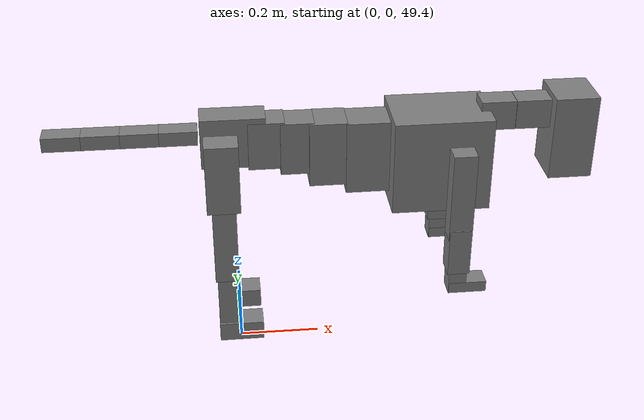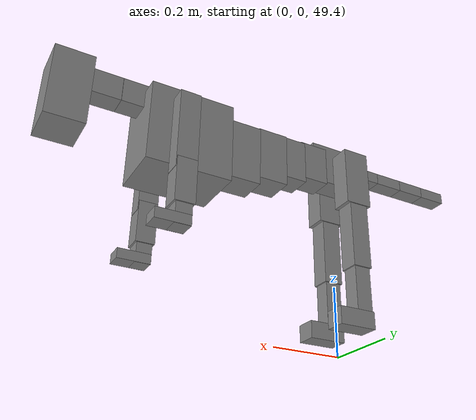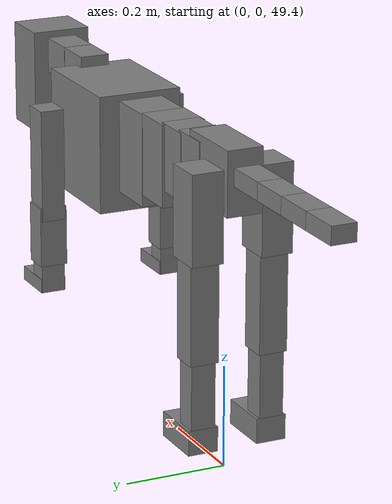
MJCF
<mujoco model="dog">

    <default>
        <joint armature="0.02" stiffness="1" damping="0.2" limited="true"/>
        <geom condim="3" friction="1 0.05 0.05" margin="0.01"/>
        <motor ctrllimited="true" ctrlrange="-1.0 1.0" forcelimited="true" gear="50"/>
    </default>

    <compiler inertiafromgeom="true" angle="radian"/>

    <option timestep="0.016" iterations="50" tolerance="1e-10" solver="Newton" jacobian="dense" cone="pyramidal"/>

    <size nconmax="20000" njmax="60000" nstack="5000000"/>
    <visual>
        <map force="0.1" zfar="30"/>
        <rgba haze="0.15 0.25 0.35 1"/>
        <quality shadowsize="2048"/>
        <global offwidth="800" offheight="800"/>
    </visual>

    <asset>
        <texture type="skybox" builtin="gradient" rgb1="0.3 0.5 0.7" rgb2="0 0 0" width="512" height="512"/>
        <texture name="texplane" type="2d" builtin="checker" rgb1=".2 .3 .4" rgb2=".1 0.15 0.2" width="512" height="512"
                 mark="cross" markrgb=".8 .8 .8"/>
        <texture name="texgeom" type="cube" builtin="flat" mark="cross" width="127" height="1278" rgb1="0.8 0.6 0.4"
                 rgb2="0.8 0.6 0.4" markrgb="1 1 1" random="0.01"/>

        <material name="matplane" reflectance="0.3" texture="texplane" texrepeat="1 1" texuniform="true"/>
        <material name="matgeom" texture="texgeom" texuniform="true" rgba="0.8 0.6 .4 1"/>
    </asset>

    <worldbody>
        <geom name="floor" pos="0 0 0" size="0 0 .25" type="plane" material="matplane" condim="3"/>

        <light directional="false" diffuse=".2 .2 .2" specular="0 0 0" pos="0 0 5" dir="0 0 -1" castshadow="false"/>
        <light mode="targetbodycom" target="torso" directional="false" diffuse=".8 .8 .8" specular="0.3 0.3 0.3"
               pos="0 0 4.0" dir="0 0 -1"/>

        <body name="root" pos="0 0 50">
            <freejoint name="root_1"/>
            <geom type="box" pos="0 0 -0.02" size="0.0774  0.0358  0.063" density="2030"/>

            <body name="spine1" pos="0.054 0 0">
                <joint name="spine1_y" axis="0 1 0" range="0 0.7" limited="true"/>
                <geom type="box" pos="0.02375 0 -0.03" size="0.04375  0.0375  0.05985" density="2030"/>

                <body name="spine2" pos="0.0612 0 0">
                    <joint name="spine2_y" axis="0 1 0" range="-0.15 0.15" limited="true"/>
                    <geom type="box" pos="0.03555  0  -0.04" size="0.04055  0.039  0.06615" density="2030"/>

                    <body name="spine3" pos="0.0730 0 0">
                        <joint name="spine3_y" axis="0 1 0" range="-0.15 0.15" limited="true"/>
                        <geom type="box" pos="0.03555  0  -0.057" size="0.04555  0.0445  0.081" density="2030"/>

                        <body name="spine4" pos="0.0780 0 0">
                            <joint name="spine4_y" axis="0 1 0" range="-0.15 0.15" limited="true"/>
                            <geom type="box" pos="0.05265  0  -0.07" size="0.05265  0.045  0.09135" density="2030"/>

                            <body name="torso" pos="0.1082 0 0">
                                <joint name="torso_y" axis="0 1 0" range="-0.15 0.15" limited="true"/>
                                <geom type="box" pos="0.11925  0  -0.085" size="0.11925  0.085  0.11745"
                                      density="2030"/>

                                <body name="neck1" pos="0.2160  0   0.0180">
                                    <joint name="neck1_y" axis="0 1 0" range="-1.2  -1" limited="true"/>
                                    <geom type="box" pos="0.0423  0  0" size="0.0423  0.03  0.036" density="2325"/>

                                    <body name="neck2" pos="0.0853  0  0">
                                        <joint name="neck2_y" axis="0 1 0" range="0.1  0" limited="true"/>
                                        <geom type="box" pos="0.0423  0  0" size="0.0423  0.03  0.036" density="2325"/>

                                        <body name="head" pos="0.0853  0  0">
                                            <joint name="head_y" axis="0 1 0" range="-0.3  -0.2" limited="true"/>
                                            <geom type="box" pos="0.0531  0  -0.055" size="0.0531  0.06  0.1044"
                                                  density="4030"/>

                                        </body>
                                    </body>
                                </body>

                                <body name="front_shoulder" pos="0.156  0   -0.0480">
                                    <joint name="front_shoulder_y" axis="0 1 0" range="-1 1.5" limited="true"/>
                                    <geom type="box" pos="0 0.13 -0.0863" size="0.0283  0.0241  0.1129" density="1158"/>
                                    <geom type="box" pos="0 -0.13 -0.0863" size="0.0283  0.0241  0.1129"
                                          density="1158"/>

                                    <body name="front_elbow" pos="0  0  -0.1726">
                                        <joint name="front_elbow_y" axis="0 1 0" range="-2 0" limited="true"/>
                                        <geom type="box" pos="0 0.13 -0.0604" size="0.0271  0.0277  0.0604"
                                              density="1081"/>
                                        <geom type="box" pos="0 -0.13 -0.0604" size="0.0271  0.0277  0.0604"
                                              density="1081"/>

                                        <body name="front_wrist" pos="0  0  -0.1209">
                                            <joint name="front_wrist_y" axis="0 1 0" range="-0.2 0" limited="true"/>
                                            <geom type="box" pos="0 0.13 -0.0219" size="0.0218  0.0242  0.0350"
                                                  density="1664"/>
                                            <geom type="box" pos="0 -0.13 -0.0219" size="0.0218  0.0242  0.0350"
                                                  density="1664"/>

                                            <body name="front_finger_end" pos="0  0  -0.0438">
                                                <joint name="front_finger_y" axis="0 1 0" range="-0.4 1"
                                                       limited="true"/>
                                                <geom type="box" pos="0.0254  0.13  0.0010"
                                                      size="0.0465  0.0254  0.0140" density="1515"/>
                                                <geom type="box" pos="0.0254  -0.13  0.0010"
                                                      size="0.0465  0.0254  0.0140" density="1515"/>

                                            </body>

                                        </body>
                                    </body>
                                </body>

                            </body>
                        </body>
                    </body>
                </body>
            </body>

            <body name="back_hip" pos="-0.03 0 -0.018">
                <joint name="back_hip_y" axis="0 1 0" range="-1.5 0.3" limited="true"/>
                <geom type="box" pos="0 0.07 -0.0649" size="0.0401  0.0314  0.0877" density="1154"/>
                <geom type="box" pos="0 -0.07 -0.0649" size="0.0401  0.0314  0.0877" density="1154"/>

                <body name="back_knee" pos="0  0  -0.1298">
                    <joint name="back_knee_y" axis="0 1 0" range="0 2.8" limited="true"/>
                    <geom type="box" pos="0 0.07 -0.1006" size="0.0288  0.0284  0.1162" density="1227"/>
                    <geom type="box" pos="0 -0.07 -0.1006" size="0.0288  0.0284  0.1162" density="1227"/>

                    <body name="back_ankle" pos="0  0  -0.2013">
                        <joint name="back_ankle_y" axis="0 1 0" range="-2.2 0" limited="true"/>
                        <geom type="box" pos="0 0.07 -0.0791" size="0.0243  0.0243  0.0903" density="1284"/>
                        <geom type="box" pos="0 -0.07 -0.0791" size="0.0243  0.0243  0.0903" density="1284"/>

                        <body name="back_toe_end" pos="0  0  -0.1582">
                            <joint name="back_toe_y" axis="0 1 0" range="-0.4 1" limited="true"/>
                            <geom type="box" pos="0.0299  0.07  -0.0095" size="0.0548  0.0299  0.0245" density="1515"/>
                            <geom type="box" pos="0.0299  -0.07  -0.0095" size="0.0548  0.0299  0.0245" density="1515"/>

                        </body>
                    </body>
                </body>
            </body>

            <body name="tail1" pos="-0.074 0 -0.006">
                <joint name="tail1_y" axis="0 1 0" range="-0.2 0.2" limited="true"/>
                <geom type="box" pos="-0.0536  0  0" size="0.045  0.025  0.0175" density="1587"/>

                <body name="tail2" pos="-0.09 0 0">
                    <joint name="tail2_y" axis="0 1 0" range="-0.2 0.2" limited="true"/>
                    <geom type="box" pos="-0.0536  0  0" size="0.045  0.025  0.0175" density="1587"/>

                    <body name="tail3" pos="-0.09 0 0">
                        <joint name="tail3_y" axis="0 1 0" range="-0.2 0.2" limited="true"/>
                        <geom type="box" pos="-0.0536  0  0" size="0.045  0.025  0.0175" density="1587"/>

                        <body name="tail4" pos="-0.09 0 0">
                            <joint name="tail4_y" axis="0 1 0" range="-0.2 0.2" limited="true"/>
                            <geom type="box" pos="-0.0536  0  0" size="0.045  0.025  0.0175" density="1587"/>

                        </body>
                    </body>
                </body>
            </body>
        </body>
    </worldbody>

    <actuator>
        <motor joint="spine1_y" forcerange="-150 150     "/>
        <motor joint="spine2_y" forcerange="-150 150     "/>
        <motor joint="spine3_y" forcerange="-150 150     "/>
        <motor joint="spine4_y" forcerange="-150 150     "/>
        <motor joint="torso_y" forcerange="-150 150     "/>
        <motor joint="neck1_y" forcerange="-100 100       "/>
        <motor joint="neck2_y" forcerange="-100 100       "/>
        <motor joint="head_y" forcerange="-150 150       "/>
        <motor joint="front_shoulder_y" forcerange="-137.15 123.85"/>
        <motor joint="front_elbow_y" forcerange="-152.73 148.97"/>
        <motor joint="front_wrist_y" forcerange="-109.04 84.41"/>
        <motor joint="front_finger_y" forcerange="-55.56 39.82"/>
        <motor joint="back_hip_y" forcerange="-347.31 271.55"/>
        <motor joint="back_knee_y" forcerange="-271.58 341.87"/>
        <motor joint="back_angle_y" forcerange="-215.51 73.22"/>
        <motor joint="back_toe_y" forcerange="-79.65 79.36"/>
        <motor joint="tail1_y" forcerange="-50 50     "/>
        <motor joint="tail2_y" forcerange="-50 50     "/>
        <motor joint="tail3_y" forcerange="-50 50     "/>
        <motor joint="tail4_y" forcerange="-50 50     "/>
    </actuator>
</mujoco>
